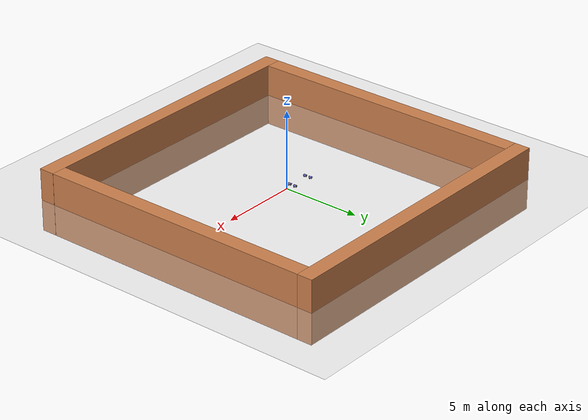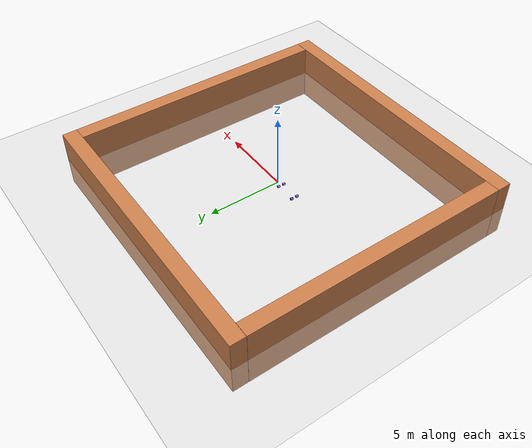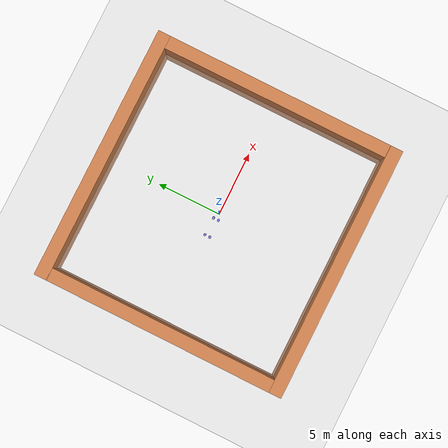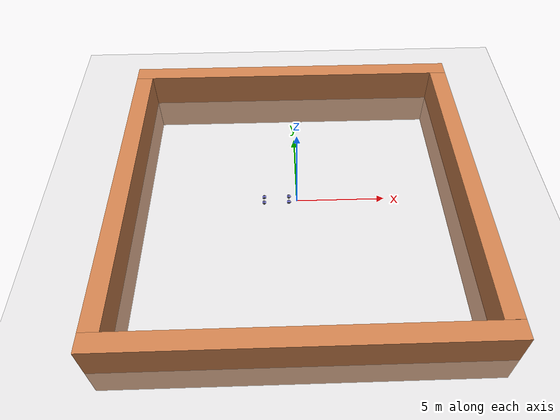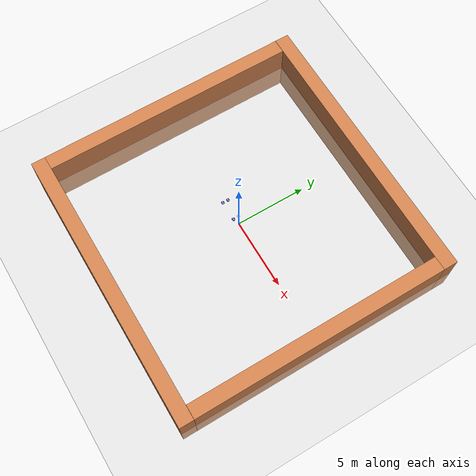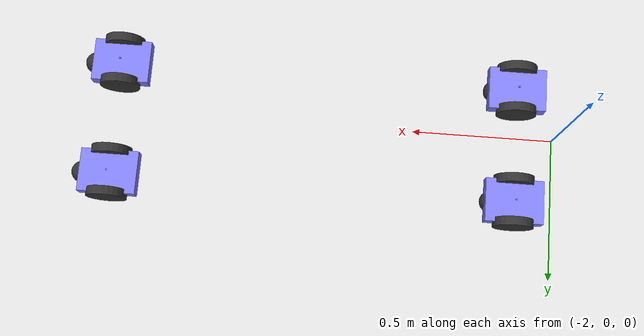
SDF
<?xml version="1.0" ?>
<sdf version="1.8">
  <world name="demo">
    <plugin
      filename="gz-sim-physics-system"
      name="gz::sim::systems::Physics">
    </plugin>
    <plugin
      filename="gz-sim-sensors-system"
      name="gz::sim::systems::Sensors">
      <render_engine>ogre2</render_engine>
    </plugin>
    <plugin
      filename="gz-sim-scene-broadcaster-system"
      name="gz::sim::systems::SceneBroadcaster">
    </plugin>
    <plugin
      filename="gz-sim-user-commands-system"
      name="gz::sim::systems::UserCommands">
    </plugin>
    <plugin
      filename="BasicSystem"
      name="ros_gz_example_gazebo::BasicSystem">
    </plugin>
    <plugin
      filename="FullSystem"
      name="ros_gz_example_gazebo::FullSystem">
    </plugin>

    <light name="sun" type="directional">
      <cast_shadows>true</cast_shadows>
      <pose>0 0 10 0 0 0</pose>
      <diffuse>0.8 0.8 0.8 1</diffuse>
      <specular>0.2 0.2 0.2 1</specular>
      <attenuation>
        <range>1000</range>
        <constant>0.9</constant>
        <linear>0.01</linear>
        <quadratic>0.001</quadratic>
      </attenuation>
      <direction>-0.5 0.1 -0.9</direction>
    </light>

    <model name="ground_plane">
      <static>true</static>
      <link name="link">
        <collision name="collision">
          <geometry>
            <plane>
              <normal>0 0 1</normal>
              <size>100 100</size>
            </plane>
          </geometry>
          <surface>
            <friction>
              <ode>
                <mu>0.5</mu>         <!-- friction coefficient in first direction -->
                <mu2>0.5</mu2>       <!-- friction coefficient in second direction -->
              </ode>
            </friction>
          </surface>
        </collision>
        <visual name="visual">
          <geometry>
            <plane>
              <normal>0 0 1</normal>
              <size>100 100</size>
            </plane>
          </geometry>
          <material>
            <ambient>0.8 0.8 0.8 1</ambient>
            <diffuse>0.8 0.8 0.8 1</diffuse>
            <specular>0.8 0.8 0.8 1</specular>
          </material>
        </visual>
      </link>
    </model>

    <model name="model_wheelset_left">
      <self_collide>true</self_collide>
      <pose>0 0 0.35 0 0 0</pose>
      <include merge="true">
          <uri>package://ros_gz_example_description/models/nipper/wheelset_left.sdf</uri>
      </include>

      <plugin
        filename="gz-sim-joint-state-publisher-system"
        name="gz::sim::systems::JointStatePublisher">
      </plugin>

    </model>

    <model name="model_wheelset_right">
      <self_collide>true</self_collide>
      <pose>0 0 0.35 0 0 0</pose>
      <include merge="true">
          <uri>package://ros_gz_example_description/models/nipper/wheelset_right.sdf</uri>
      </include>

      <plugin
        filename="gz-sim-joint-state-publisher-system"
        name="gz::sim::systems::JointStatePublisher">
      </plugin>

    </model>

    <model name="model_wheelset_rear_right">
      <self_collide>true</self_collide>
      <pose>0 0 0.35 0 0 0</pose>
      <include merge="true">
          <uri>package://ros_gz_example_description/models/nipper/wheelset_rear_right.sdf</uri>
      </include>

      <plugin
        filename="gz-sim-joint-state-publisher-system"
        name="gz::sim::systems::JointStatePublisher">
      </plugin>

    </model>

    <model name="model_wheelset_rear_left">
      <self_collide>true</self_collide>
      <pose>0 0 0.35 0 0 0</pose>
      <include merge="true">
          <uri>package://ros_gz_example_description/models/nipper/wheelset_rear_left.sdf</uri>
      </include>

      <plugin
        filename="gz-sim-joint-state-publisher-system"
        name="gz::sim::systems::JointStatePublisher">
      </plugin>

    </model>

    <!-- Front Right Wheelset -->

    <!-- Rear Right Wheelset -->

    <!-- Front Left Wheelset -->

    <!-- Rear Left Wheelset -->

    <!-- Joint connecting robot and wheel -->

    <model name='wall_1'>
      <static>true</static>
      <pose>0 9.5 0 0 0 1.57</pose><!--pose relative to the world-->
      <link name='box'>
          <pose/>
          <visual name='visual'>
              <geometry>
                  <box>
                      <size>1 20.0 4.0</size>
                  </box>
              </geometry>
              <!--let's add color to our link-->
              <material>
                  <ambient>0.8 0.5 0.3 1</ambient>    <!-- Light brown ambient color -->
                  <diffuse>0.8 0.5 0.3 1</diffuse>    <!-- Light brown diffuse color -->
                  <specular>0.5 0.3 0.2 1</specular>  <!-- Lighter brown specular color -->
              </material>
          </visual>
          <collision name='collision'>
              <geometry>
                  <box>
                      <size>1 20.0 4.0</size>
                  </box>
              </geometry>
          </collision>

          <sensor name='sensor_contact' type='contact'>
              <contact>
                  <collision>collision</collision>
              </contact>
          </sensor>
      </link>

      <plugin filename="libignition-gazebo-touchplugin-system.so"
          name="ignition::gazebo::systems::TouchPlugin">
          <target>nipper</target>
          <namespace>wall</namespace>
          <time>0.001</time>
          <enabled>true</enabled>
      </plugin>

  </model>

  <model name='wall_2'>
      <static>true</static>
      <pose>0 -9.5 0 0 0 1.57</pose><!--pose relative to the world-->
      <link name='box'>
          <pose/>
          <visual name='visual'>
              <geometry>
                  <box>
                      <size>1 20.0 4.0</size>
                  </box>
              </geometry>
              <!--let's add color to our link-->
              <material>
                  <ambient>0.8 0.5 0.3 1</ambient>    <!-- Light brown ambient color -->
                  <diffuse>0.8 0.5 0.3 1</diffuse>    <!-- Light brown diffuse color -->
                  <specular>0.5 0.3 0.2 1</specular>  <!-- Lighter brown specular color -->
              </material>
          </visual>
          <collision name='collision'>
              <geometry>
                  <box>
                      <size>1 20.0 4.0</size>
                  </box>
              </geometry>
          </collision>

          <sensor name='sensor_contact' type='contact'>
              <contact>
                  <collision>collision</collision>
              </contact>
          </sensor>
      </link>

      <plugin filename="libignition-gazebo-touchplugin-system.so"
          name="ignition::gazebo::systems::TouchPlugin">
          <target>nipper</target>
          <namespace>wall</namespace>
          <time>0.001</time>
          <enabled>true</enabled>
      </plugin>

  </model>

   <model name='wall_3'>
      <static>true</static>
      <pose>9.5 0 0 0 0 0</pose><!--pose relative to the world-->
      <link name='box'>
          <pose/>
          <visual name='visual'>
              <geometry>
                  <box>
                      <size>1 18.0 4.0</size>
                  </box>
              </geometry>
              <!--let's add color to our link-->
              <material>
                  <ambient>0.8 0.5 0.3 1</ambient>    <!-- Light brown ambient color -->
                  <diffuse>0.8 0.5 0.3 1</diffuse>    <!-- Light brown diffuse color -->
                  <specular>0.5 0.3 0.2 1</specular>  <!-- Lighter brown specular color -->
              </material>
          </visual>
          <collision name='collision'>
              <geometry>
                  <box>
                      <size>1 18.0 2.0</size>
                  </box>
              </geometry>
          </collision>

          <sensor name='sensor_contact' type='contact'>
              <contact>
                  <collision>collision</collision>
              </contact>
          </sensor>
      </link>

      <plugin filename="libignition-gazebo-touchplugin-system.so"
          name="ignition::gazebo::systems::TouchPlugin">
          <target>nipper</target>
          <namespace>wall</namespace>
          <time>0.001</time>
          <enabled>true</enabled>
      </plugin>

  </model>

  <model name='wall_4'>
      <static>true</static>
      <pose>-9.5 0 0 0 0 0</pose><!--pose relative to the world-->
      <link name='box'>
          <pose/>
          <visual name='visual'>
              <geometry>
                  <box>
                      <size>1 18.0 4.0</size>
                  </box>
              </geometry>
              <!--let's add color to our link-->
              <material>
                  <ambient>0.8 0.5 0.3 1</ambient>    <!-- Light brown ambient color -->
                  <diffuse>0.8 0.5 0.3 1</diffuse>    <!-- Light brown diffuse color -->
                  <specular>0.5 0.3 0.2 1</specular>  <!-- Lighter brown specular color -->
              </material>
          </visual>
          <collision name='collision'>
              <geometry>
                  <box>
                      <size>1 18.0 4.0</size>
                  </box>
              </geometry>
          </collision>

          <sensor name='sensor_contact' type='contact'>
              <contact>
                  <collision>collision</collision>
              </contact>
          </sensor>
      </link>

      <plugin filename="libignition-gazebo-touchplugin-system.so"
          name="ignition::gazebo::systems::TouchPlugin">
          <target>nipper</target>
          <namespace>wall</namespace>
          <time>0.001</time>
          <enabled>true</enabled>
      </plugin>

  </model>

  </world>
</sdf>

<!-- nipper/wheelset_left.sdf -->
<sdf version="1.8">
    <model name='model_wheelset_left'>
      <link name='base_link_3'>
        <pose>-0.45 0.25 -0.20 0 -0 0</pose>
        <inertial>
          <mass>50</mass>
          <inertia>
            <ixx>0.126164</ixx>
            <ixy>0</ixy>
            <ixz>0</ixz>
            <iyy>0.416519</iyy>
            <iyz>0</iyz>
            <izz>0.481014</izz>
          </inertia>
        </inertial>
        <visual name='visual_base_link_3'>
          <geometry>
            <box>
              <size>0.005 0.005 0.005</size>
            </box>
          </geometry>
          <material>
            <ambient>0.5 0.5 1.0 1</ambient>
            <diffuse>0.5 0.5 1.0 1</diffuse>
            <specular>0.0 0.0 1.0 1</specular>
          </material>
        </visual>
        <collision name='collision_base_link_3'>
          <geometry>
            <box>
              <size>0.005 0.005 0.005</size>
            </box>
          </geometry>
        </collision>
      </link>

    <link name='wheelset_left'>
      <pose>-0.45 0.25 -0.25 0 -0 0</pose>
      <inertial>
        <mass>4.8</mass>
        <inertia>
          <ixx>0.126164</ixx>
          <ixy>0</ixy>
          <ixz>0</ixz>
          <iyy>0.416519</iyy>
          <iyz>0</iyz>
          <izz>0.481014</izz>
        </inertia>
      </inertial>
      <visual name='wheelset_left_visual_base_link'>
        <geometry>
          <box>
            <size>0.2 0.15 0.05</size>
          </box>
        </geometry>
        <material>
          <ambient>0.5 0.5 1.0 1</ambient>
          <diffuse>0.5 0.5 1.0 1</diffuse>
          <specular>0.0 0.0 1.0 1</specular>
        </material>
      </visual>
      <collision name='wheelset_left_collision_base_link'>
        <geometry>
          <box>
            <size>0.2 0.15 0.05</size>
          </box>
        </geometry>
      </collision>
    </link>

    <link name='wheelset_left_left_wheel'>
      <pose>-0.45 0.325 -0.25 -1.5707 0 0</pose>
      <inertial>
        <mass>0.2</mass>
        <inertia>
          <ixx>0.145833</ixx>
          <ixy>0</ixy>
          <ixz>0</ixz>
          <iyy>0.145833</iyy>
          <iyz>0</iyz>
          <izz>0.125</izz>
        </inertia>
      </inertial>
      <visual name='wheelset_left_visual_left_wheel'>
        <geometry>
          <cylinder>
          <radius>0.07</radius>
          <length>0.03</length>
          </cylinder>
        </geometry>
        <material>
          <ambient>0.2 0.2 0.2 1</ambient>
          <diffuse>0.2 0.2 0.2 1</diffuse>
          <specular>0.2 0.2 0.2 1</specular>
        </material>
      </visual>
      <collision name='wheelset_left_collision_left_wheel'>
        <geometry>
          <sphere>
            <radius>0.07</radius>
          </sphere>
        </geometry>
      </collision>
    </link>

    <link name='wheelset_left_right_wheel'>
      <pose>-0.45 0.175 -0.25 -1.5707 0 0</pose>
      <inertial>
        <mass>0.2</mass>
        <inertia>
          <ixx>0.145833</ixx>
          <ixy>0</ixy>
          <ixz>0</ixz>
          <iyy>0.145833</iyy>
          <iyz>0</iyz>
          <izz>0.125</izz>
        </inertia>
      </inertial>
      <visual name='wheelset_left_visual_right_wheel'>
        <geometry>
          <cylinder>
          <radius>0.07</radius>
          <length>0.03</length>
          </cylinder>
        </geometry>
        <material>
          <ambient>0.2 0.2 0.2 1</ambient>
          <diffuse>0.2 0.2 0.2 1</diffuse>
          <specular>0.2 0.2 0.2 1</specular>
        </material>
      </visual>
      <collision name='wheelset_left_collision_right_wheel'>
        <geometry>
          <sphere>
            <radius>0.07</radius>
          </sphere>
        </geometry>
      </collision>
    </link>

    <joint name='wheelset_left_left_wheel_joint' type='revolute'>
      <parent>wheelset_left</parent>
      <child>wheelset_left_left_wheel</child>
      <axis>
        <xyz>0 0 1</xyz>
        <limit>
          <lower>-1.79769e+308</lower>
          <upper>1.79769e+308</upper>
        </limit>
      </axis>
    </joint>

    <joint name='wheelset_left_right_wheel_joint' type='revolute'>
      <parent>wheelset_left</parent>
      <child>wheelset_left_right_wheel</child>
      <axis>
        <xyz>0 0 1</xyz>
        <limit>
          <lower>-1.79769e+308</lower>
          <upper>1.79769e+308</upper>
        </limit>
      </axis>
    </joint>

    <!-- Joint controller plugin -->
    <plugin name="gz::sim::systems::JointController" filename="gz-sim-joint-controller-system">
      <joint_name>wheelset_left_left_wheel_joint</joint_name>
    </plugin>

    <plugin name="gz::sim::systems::JointController" filename="gz-sim-joint-controller-system">
      <joint_name>wheelset_left_right_wheel_joint</joint_name>
    </plugin>

    <!-- Left -->
    <joint name="wheelset_left_revolute_joint" type="revolute">
      <parent>base_link_3</parent>
      <child>wheelset_left</child>
      <axis>
        <xyz>0 0 1</xyz>
        <limit>
          <lower>-2.007</lower>
          <upper>2.007</upper>
        </limit>
        <dynamics>
          <damping>40</damping>
          <friction>0.6</friction>
        </dynamics>
      </axis>
    </joint>

    <!-- Caster -->

     <link name='caster_3'>
        <pose>-0.35 0.25 -0.28 0 -0 0</pose>
        <inertial>
          <mass>0.1</mass>
          <inertia>
            <ixx>0.1</ixx>
            <ixy>0</ixy>
            <ixz>0</ixz>
            <iyy>0.1</iyy>
            <iyz>0</iyz>
            <izz>0.1</izz>
          </inertia>
        </inertial>
        <visual name='visual_caster'>
          <geometry>
            <sphere>
              <radius>0.038</radius>
            </sphere>
          </geometry>
          <material>
            <ambient>0.2 0.2 0.2 1</ambient>
            <diffuse>0.2 0.2 0.2 1</diffuse>
            <specular>0.2 0.2 0.2 1</specular>
          </material>
        </visual>
        <collision name='collision_caster'>
          <geometry>
            <sphere>
              <radius>0.038</radius>
            </sphere>
          </geometry>
        </collision>
      </link>

      <joint name='caster_3_wheel' type='ball'>
        <parent>wheelset_left</parent>
        <child>caster_3</child>
      </joint>

    </model>
</sdf>

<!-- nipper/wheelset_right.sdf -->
<sdf version="1.8">
    <model name='model_wheelset_right'>
      <link name='base_link_1'>
        <pose>-0.45 -0.15 -0.20 0 -0 0</pose>
        <inertial>
          <mass>50</mass>
          <inertia>
            <ixx>0.126164</ixx>
            <ixy>0</ixy>
            <ixz>0</ixz>
            <iyy>0.416519</iyy>
            <iyz>0</iyz>
            <izz>0.481014</izz>
          </inertia>
        </inertial>
        <visual name='visual_base_link_1'>
          <geometry>
            <box>
              <size>0.005 0.005 0.005</size>
            </box>
          </geometry>
          <material>
            <ambient>0.5 0.5 1.0 1</ambient>
            <diffuse>0.5 0.5 1.0 1</diffuse>
            <specular>0.0 0.0 1.0 1</specular>
          </material>
        </visual>
        <collision name='collision_base_link_1'>
          <geometry>
            <box>
              <size>0.005 0.005 0.005</size>
            </box>
          </geometry>
        </collision>
      </link>

      <link name='wheelset_right'>
        <pose>-0.45 -0.15 -0.25 0 -0 0</pose>
        <inertial>
          <mass>4.8</mass>
          <inertia>
            <ixx>0.126164</ixx>
            <ixy>0</ixy>
            <ixz>0</ixz>
            <iyy>0.416519</iyy>
            <iyz>0</iyz>
            <izz>0.481014</izz>
          </inertia>
        </inertial>
        <visual name='wheelset_right_visual_base_link'>
          <geometry>
            <box>
              <size>0.2 0.15 0.05</size>
            </box>
          </geometry>
          <material>
            <ambient>0.5 0.5 1.0 1</ambient>
            <diffuse>0.5 0.5 1.0 1</diffuse>
            <specular>0.0 0.0 1.0 1</specular>
          </material>
        </visual>
        <collision name='wheelset_right_collision_base_link'>
          <geometry>
            <box>
              <size>0.2 0.15 0.05</size>
            </box>
          </geometry>
        </collision>
      </link>

      <link name='wheelset_right_left_wheel'>
        <pose>-0.45 -0.075 -0.25 -1.5707 0 0</pose>
        <inertial>
          <mass>0.2</mass>
          <inertia>
            <ixx>0.145833</ixx>
            <ixy>0</ixy>
            <ixz>0</ixz>
            <iyy>0.145833</iyy>
            <iyz>0</iyz>
            <izz>0.125</izz>
          </inertia>
        </inertial>
        <visual name='wheelset_right_visual_left_wheel'>
          <geometry>
            <cylinder>
            <radius>0.07</radius>
            <length>0.03</length>
            </cylinder>
          </geometry>
          <material>
            <ambient>0.2 0.2 0.2 1</ambient>
            <diffuse>0.2 0.2 0.2 1</diffuse>
            <specular>0.2 0.2 0.2 1</specular>
          </material>
        </visual>
        <collision name='wheelset_right_collision_left_wheel'>
          <geometry>
            <sphere>
              <radius>0.07</radius>
            </sphere>
          </geometry>
        </collision>
      </link>

      <link name='wheelset_right_right_wheel'>
        <pose>-0.45 -0.225 -0.25 -1.5707 0 0</pose>
        <inertial>
          <mass>0.2</mass>
          <inertia>
            <ixx>0.145833</ixx>
            <ixy>0</ixy>
            <ixz>0</ixz>
            <iyy>0.145833</iyy>
            <iyz>0</iyz>
            <izz>0.125</izz>
          </inertia>
        </inertial>
        <visual name='wheelset_right_visual_right_wheel'>
          <geometry>
            <cylinder>
            <radius>0.07</radius>
            <length>0.03</length>
            </cylinder>
          </geometry>
          <material>
            <ambient>0.2 0.2 0.2 1</ambient>
            <diffuse>0.2 0.2 0.2 1</diffuse>
            <specular>0.2 0.2 0.2 1</specular>
          </material>
        </visual>
        <collision name='wheelset_right_collision_right_wheel'>
          <geometry>
            <sphere>
              <radius>0.07</radius>
            </sphere>
          </geometry>
        </collision>
      </link>

      <joint name='wheelset_right_left_wheel_joint' type='revolute'>
        <parent>wheelset_right</parent>
        <child>wheelset_right_left_wheel</child>
        <axis>
          <xyz>0 0 1</xyz>
          <limit>
            <lower>-1.79769e+308</lower>
            <upper>1.79769e+308</upper>
          </limit>
        </axis>
      </joint>

      <joint name='wheelset_right_right_wheel_joint' type='revolute'>
        <parent>wheelset_right</parent>
        <child>wheelset_right_right_wheel</child>
        <axis>
          <xyz>0 0 1</xyz>
          <limit>
            <lower>-1.79769e+308</lower>
            <upper>1.79769e+308</upper>
          </limit>
        </axis>
      </joint>

      <!-- Joint controller plugin -->
      <plugin name="gz::sim::systems::JointController" filename="gz-sim-joint-controller-system">
        <joint_name>wheelset_right_left_wheel_joint</joint_name>
      </plugin>

      <plugin name="gz::sim::systems::JointController" filename="gz-sim-joint-controller-system">
        <joint_name>wheelset_right_right_wheel_joint</joint_name>
      </plugin>

    <!-- RIGHT -->
    <joint name="wheelset_right_revolute_joint" type="revolute">
      <parent>base_link_1</parent>
      <child>wheelset_right</child>
      <axis>
        <xyz>0 0 1</xyz>
        <limit>
          <lower>-2.007</lower>
          <upper>2.007</upper>
        </limit>
        <dynamics>
          <damping>40</damping>
          <friction>0.6</friction>
        </dynamics>
      </axis>
    </joint>

    <!-- Caster -->

     <link name='caster_1'>
        <pose>-0.35 -0.15 -0.28 0 -0 0</pose>
        <inertial>
          <mass>0.1</mass>
          <inertia>
            <ixx>0.1</ixx>
            <ixy>0</ixy>
            <ixz>0</ixz>
            <iyy>0.1</iyy>
            <iyz>0</iyz>
            <izz>0.1</izz>
          </inertia>
        </inertial>
        <visual name='visual_caster'>
          <geometry>
            <sphere>
              <radius>0.038</radius>
            </sphere>
          </geometry>
          <material>
            <ambient>0.2 0.2 0.2 1</ambient>
            <diffuse>0.2 0.2 0.2 1</diffuse>
            <specular>0.2 0.2 0.2 1</specular>
          </material>
        </visual>
        <collision name='collision_caster'>
          <geometry>
            <sphere>
              <radius>0.038</radius>
            </sphere>
          </geometry>
        </collision>
      </link>

      <joint name='caster_1_wheel' type='ball'>
        <parent>wheelset_right</parent>
        <child>caster_1</child>
      </joint>

    </model>
</sdf>

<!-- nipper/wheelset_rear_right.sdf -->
<sdf version="1.8">
    <model name='model_wheelset_rear_right'>
      <link name='base_link_2'>
        <pose>-1.85 -0.15 -0.20 0 -0 0</pose>
        <inertial>
          <mass>50</mass>
          <inertia>
            <ixx>0.126164</ixx>
            <ixy>0</ixy>
            <ixz>0</ixz>
            <iyy>0.416519</iyy>
            <iyz>0</iyz>
            <izz>0.481014</izz>
          </inertia>
        </inertial>
        <visual name='visual_base_link_1'>
          <geometry>
            <box>
              <size>0.005 0.005 0.005</size>
            </box>
          </geometry>
          <material>
            <ambient>0.5 0.5 1.0 1</ambient>
            <diffuse>0.5 0.5 1.0 1</diffuse>
            <specular>0.0 0.0 1.0 1</specular>
          </material>
        </visual>
        <collision name='collision_base_link_1'>
          <geometry>
            <box>
              <size>0.005 0.005 0.005</size>
            </box>
          </geometry>
        </collision>
      </link>

      <link name='wheelset_rear_right'>
        <pose>-1.85 -0.15 -0.25 0 -0 0</pose>
        <inertial>
          <mass>4.8</mass>
          <inertia>
            <ixx>0.126164</ixx>
            <ixy>0</ixy>
            <ixz>0</ixz>
            <iyy>0.416519</iyy>
            <iyz>0</iyz>
            <izz>0.481014</izz>
          </inertia>
        </inertial>
        <visual name='wheelset_rear_right_visual_base_link'>
          <geometry>
            <box>
              <size>0.2 0.15 0.05</size>
            </box>
          </geometry>
          <material>
            <ambient>0.5 0.5 1.0 1</ambient>
            <diffuse>0.5 0.5 1.0 1</diffuse>
            <specular>0.0 0.0 1.0 1</specular>
          </material>
        </visual>
        <collision name='wheelset_rear_right_collision_base_link'>
          <geometry>
            <box>
              <size>0.2 0.15 0.05</size>
            </box>
          </geometry>
        </collision>
      </link>

      <link name='wheelset_rear_right_left_wheel'>
        <pose>-1.85 -0.075 -0.25 -1.5707 0 0</pose>
        <inertial>
          <mass>0.2</mass>
          <inertia>
            <ixx>0.145833</ixx>
            <ixy>0</ixy>
            <ixz>0</ixz>
            <iyy>0.145833</iyy>
            <iyz>0</iyz>
            <izz>0.125</izz>
          </inertia>
        </inertial>
        <visual name='wheelset_rear_right_visual_left_wheel'>
          <geometry>
            <cylinder>
            <radius>0.07</radius>
            <length>0.03</length>
            </cylinder>
          </geometry>
          <material>
            <ambient>0.2 0.2 0.2 1</ambient>
            <diffuse>0.2 0.2 0.2 1</diffuse>
            <specular>0.2 0.2 0.2 1</specular>
          </material>
        </visual>
        <collision name='wheelset_rear_right_collision_left_wheel'>
          <geometry>
            <sphere>
              <radius>0.07</radius>
            </sphere>
          </geometry>
        </collision>
      </link>

      <link name='wheelset_rear_right_right_wheel'>
        <pose>-1.85 -0.225 -0.25 -1.5707 0 0</pose>
        <inertial>
          <mass>0.2</mass>
          <inertia>
            <ixx>0.145833</ixx>
            <ixy>0</ixy>
            <ixz>0</ixz>
            <iyy>0.145833</iyy>
            <iyz>0</iyz>
            <izz>0.125</izz>
          </inertia>
        </inertial>
        <visual name='wheelset_rear_right_visual_right_wheel'>
          <geometry>
            <cylinder>
            <radius>0.07</radius>
            <length>0.03</length>
            </cylinder>
          </geometry>
          <material>
            <ambient>0.2 0.2 0.2 1</ambient>
            <diffuse>0.2 0.2 0.2 1</diffuse>
            <specular>0.2 0.2 0.2 1</specular>
          </material>
        </visual>
        <collision name='wheelset_rear_right_collision_right_wheel'>
          <geometry>
            <sphere>
              <radius>0.07</radius>
            </sphere>
          </geometry>
        </collision>
      </link>

      <joint name='wheelset_rear_right_left_wheel_joint' type='revolute'>
        <parent>wheelset_rear_right</parent>
        <child>wheelset_rear_right_left_wheel</child>
        <axis>
          <xyz>0 0 1</xyz>
          <limit>
            <lower>-1.79769e+308</lower>
            <upper>1.79769e+308</upper>
          </limit>
        </axis>
      </joint>

      <joint name='wheelset_rear_right_right_wheel_joint' type='revolute'>
        <parent>wheelset_rear_right</parent>
        <child>wheelset_rear_right_right_wheel</child>
        <axis>
          <xyz>0 0 1</xyz>
          <limit>
            <lower>-1.79769e+308</lower>
            <upper>1.79769e+308</upper>
          </limit>
        </axis>
      </joint>

      <!-- Joint controller plugin -->
      <plugin name="gz::sim::systems::JointController" filename="gz-sim-joint-controller-system">
        <joint_name>wheelset_rear_right_left_wheel_joint</joint_name>
      </plugin>

      <plugin name="gz::sim::systems::JointController" filename="gz-sim-joint-controller-system">
        <joint_name>wheelset_rear_right_right_wheel_joint</joint_name>
      </plugin>

    <!-- REAR RIGHT -->
    <joint name="wheelset_rear_right_revolute_joint" type="revolute">
      <parent>base_link_2</parent>
      <child>wheelset_rear_right</child>
      <axis>
        <xyz>0 0 1</xyz>
        <limit>
          <lower>-2.007</lower>
          <upper>2.007</upper>
        </limit>
        <dynamics>
          <damping>40</damping>
          <friction>0.6</friction>
        </dynamics>
      </axis>
    </joint>

    <!-- Caster -->

     <link name='caster_2'>
        <pose>-1.775 -0.15 -0.28 0 -0 0</pose>
        <inertial>
          <mass>0.1</mass>
          <inertia>
            <ixx>0.1</ixx>
            <ixy>0</ixy>
            <ixz>0</ixz>
            <iyy>0.1</iyy>
            <iyz>0</iyz>
            <izz>0.1</izz>
          </inertia>
        </inertial>
        <visual name='visual_caster'>
          <geometry>
            <sphere>
              <radius>0.038</radius>
            </sphere>
          </geometry>
          <material>
            <ambient>0.2 0.2 0.2 1</ambient>
            <diffuse>0.2 0.2 0.2 1</diffuse>
            <specular>0.2 0.2 0.2 1</specular>
          </material>
        </visual>
        <collision name='collision_caster'>
          <geometry>
            <sphere>
              <radius>0.038</radius>
            </sphere>
          </geometry>
        </collision>
      </link>

      <joint name='caster_2_wheel' type='ball'>
        <parent>wheelset_rear_right</parent>
        <child>caster_2</child>
      </joint>

    </model>
</sdf>

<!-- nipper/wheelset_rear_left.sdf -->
<sdf version="1.8">
    <model name='model_wheelset_rear_left'>
      <link name='base_link_4'>
        <pose>-1.85 0.25 -0.20 0 -0 0</pose>
        <inertial>
          <mass>50</mass>
          <inertia>
            <ixx>0.126164</ixx>
            <ixy>0</ixy>
            <ixz>0</ixz>
            <iyy>0.416519</iyy>
            <iyz>0</iyz>
            <izz>0.481014</izz>
          </inertia>
        </inertial>
        <visual name='visual_base_link_4'>
          <geometry>
            <box>
              <size>0.005 0.005 0.005</size>
            </box>
          </geometry>
          <material>
            <ambient>0.5 0.5 1.0 1</ambient>
            <diffuse>0.5 0.5 1.0 1</diffuse>
            <specular>0.0 0.0 1.0 1</specular>
          </material>
        </visual>
        <collision name='collision_base_link_4'>
          <geometry>
            <box>
              <size>0.005 0.005 0.005</size>
            </box>
          </geometry>
        </collision>
      </link>

      <link name='wheelset_rear_left'>
        <pose>-1.85 0.25 -0.25 0 -0 0</pose>
        <inertial>
          <mass>4.8</mass>
          <inertia>
            <ixx>0.126164</ixx>
            <ixy>0</ixy>
            <ixz>0</ixz>
            <iyy>0.416519</iyy>
            <iyz>0</iyz>
            <izz>0.481014</izz>
          </inertia>
        </inertial>
        <visual name='wheelset_rear_left_visual_base_link'>
          <geometry>
            <box>
              <size>0.2 0.15 0.05</size>
            </box>
          </geometry>
          <material>
            <ambient>0.5 0.5 1.0 1</ambient>
            <diffuse>0.5 0.5 1.0 1</diffuse>
            <specular>0.0 0.0 1.0 1</specular>
          </material>
        </visual>
        <collision name='wheelset_rear_left_collision_base_link'>
          <geometry>
            <box>
              <size>0.2 0.15 0.05</size>
            </box>
          </geometry>
        </collision>
      </link>

      <link name='wheelset_rear_left_left_wheel'>
        <pose>-1.85 0.325 -0.25 -1.5707 0 0</pose>
        <inertial>
          <mass>0.2</mass>
          <inertia>
            <ixx>0.145833</ixx>
            <ixy>0</ixy>
            <ixz>0</ixz>
            <iyy>0.145833</iyy>
            <iyz>0</iyz>
            <izz>0.125</izz>
          </inertia>
        </inertial>
        <visual name='wheelset_rear_left_visual_left_wheel'>
          <geometry>
            <cylinder>
            <radius>0.07</radius>
            <length>0.03</length>
            </cylinder>
          </geometry>
          <material>
            <ambient>0.2 0.2 0.2 1</ambient>
            <diffuse>0.2 0.2 0.2 1</diffuse>
            <specular>0.2 0.2 0.2 1</specular>
          </material>
        </visual>
        <collision name='wheelset_rear_left_collision_left_wheel'>
          <geometry>
            <sphere>
              <radius>0.07</radius>
            </sphere>
          </geometry>
        </collision>
      </link>

      <link name='wheelset_rear_left_right_wheel'>
        <pose>-1.85 0.175 -0.25 -1.5707 0 0</pose>
        <inertial>
          <mass>0.2</mass>
          <inertia>
            <ixx>0.145833</ixx>
            <ixy>0</ixy>
            <ixz>0</ixz>
            <iyy>0.145833</iyy>
            <iyz>0</iyz>
            <izz>0.125</izz>
          </inertia>
        </inertial>
        <visual name='wheelset_rear_left_visual_right_wheel'>
          <geometry>
            <cylinder>
            <radius>0.07</radius>
            <length>0.03</length>
            </cylinder>
          </geometry>
          <material>
            <ambient>0.2 0.2 0.2 1</ambient>
            <diffuse>0.2 0.2 0.2 1</diffuse>
            <specular>0.2 0.2 0.2 1</specular>
          </material>
        </visual>
        <collision name='wheelset_rear_left_collision_right_wheel'>
          <geometry>
            <sphere>
              <radius>0.07</radius>
            </sphere>
          </geometry>
        </collision>
      </link>

      <joint name='wheelset_rear_left_left_wheel_joint' type='revolute'>
        <parent>wheelset_rear_left</parent>
        <child>wheelset_rear_left_left_wheel</child>
        <axis>
          <xyz>0 0 1</xyz>
          <limit>
            <lower>-1.79769e+308</lower>
            <upper>1.79769e+308</upper>
          </limit>
        </axis>
      </joint>

      <joint name='wheelset_rear_left_right_wheel_joint' type='revolute'>
        <parent>wheelset_rear_left</parent>
        <child>wheelset_rear_left_right_wheel</child>
        <axis>
          <xyz>0 0 1</xyz>
          <limit>
            <lower>-1.79769e+308</lower>
            <upper>1.79769e+308</upper>
          </limit>
        </axis>
      </joint>

      <!-- Joint controller plugin -->
      <plugin name="gz::sim::systems::JointController" filename="gz-sim-joint-controller-system">
        <joint_name>wheelset_rear_left_left_wheel_joint</joint_name>
      </plugin>

      <plugin name="gz::sim::systems::JointController" filename="gz-sim-joint-controller-system">
        <joint_name>wheelset_rear_left_right_wheel_joint</joint_name>
      </plugin>

    <!-- REAR LEFT -->
    <joint name="wheelset_rear_left_revolute_joint" type="revolute">
      <parent>base_link_4</parent>
      <child>wheelset_rear_left</child>

      <axis>
        <xyz>0 0 1</xyz>
        <limit>
          <lower>-2.007</lower>
          <upper>2.007</upper>
        </limit>
        <dynamics>
          <damping>40</damping>
          <friction>0.6</friction>
        </dynamics>
      </axis>
    </joint>

    <!-- Caster -->

     <link name='caster_4'>
        <pose>-1.775 0.25 -0.28 0 -0 0</pose>
        <inertial>
          <mass>0.1</mass>
          <inertia>
            <ixx>0.1</ixx>
            <ixy>0</ixy>
            <ixz>0</ixz>
            <iyy>0.1</iyy>
            <iyz>0</iyz>
            <izz>0.1</izz>
          </inertia>
        </inertial>
        <visual name='visual_caster'>
          <geometry>
            <sphere>
              <radius>0.038</radius>
            </sphere>
          </geometry>
          <material>
            <ambient>0.2 0.2 0.2 1</ambient>
            <diffuse>0.2 0.2 0.2 1</diffuse>
            <specular>0.2 0.2 0.2 1</specular>
          </material>
        </visual>
        <collision name='collision_caster'>
          <geometry>
            <sphere>
              <radius>0.038</radius>
            </sphere>
          </geometry>
        </collision>
      </link>

      <joint name='caster_4_wheel' type='ball'>
        <parent>wheelset_rear_left</parent>
        <child>caster_4</child>
      </joint>

    </model>
</sdf>
